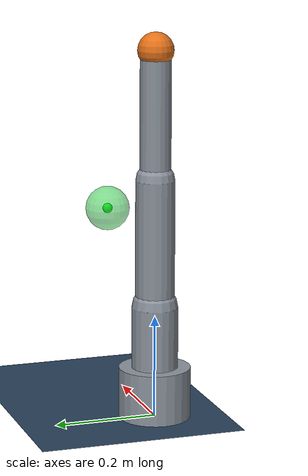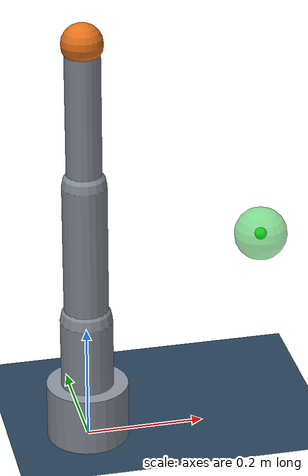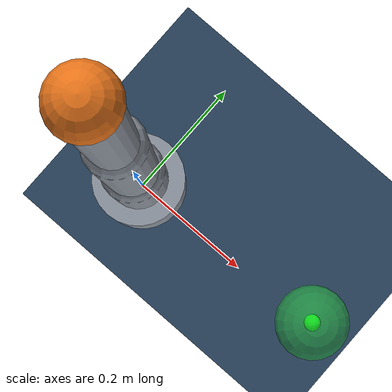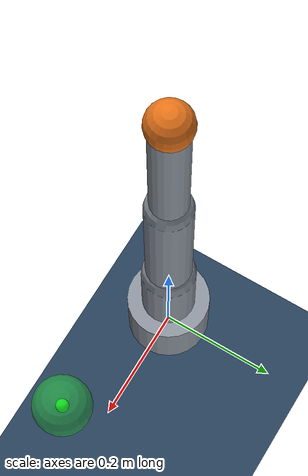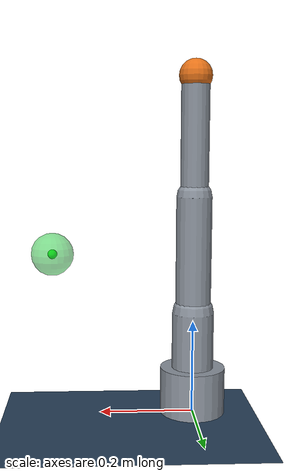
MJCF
<mujoco model="arm3_reacher">
  <!-- 3-DOF manipulator: shoulder pan (z), shoulder lift (y), elbow (y).
       The green sphere is a mocap body used as the reach target. -->

  <compiler angle="radian" autolimits="true"/>
  <option timestep="0.002" integrator="implicitfast" gravity="0 0 -9.81"/>

  <visual>
    <headlight diffuse="0.6 0.6 0.6" ambient="0.3 0.3 0.3" specular="0 0 0"/>
    <rgba haze="0.15 0.25 0.35 1"/>
    <global azimuth="140" elevation="-20"/>
  </visual>

  <asset>
    <texture type="skybox" builtin="gradient" rgb1="0.3 0.5 0.7" rgb2="0 0 0" width="512" height="3072"/>
    <texture type="2d" name="groundplane" builtin="checker" mark="edge"
             rgb1="0.2 0.3 0.4" rgb2="0.1 0.2 0.3" markrgb="0.8 0.8 0.8"
             width="300" height="300"/>
    <material name="groundplane" texture="groundplane" texuniform="true" texrepeat="5 5" reflectance="0.1"/>
    <material name="metal"  rgba="0.55 0.58 0.62 1" specular="0.6" shininess="0.6"/>
    <material name="accent" rgba="0.90 0.45 0.10 1" specular="0.4" shininess="0.4"/>
    <material name="target" rgba="0.15 0.80 0.25 0.55"/>
  </asset>

  <default>
    <joint type="hinge" damping="1.0" armature="0.1" limited="true"/>
    <geom type="capsule" material="metal" density="1000" friction="0.6 0.005 0.0001"/>
    <motor ctrlrange="-1 1" ctrllimited="true"/>
  </default>

  <worldbody>
    <light name="spotlight" mode="targetbodycom" target="link3" pos="0 -1.5 2" cutoff="45"/>
    <geom name="floor" type="plane" size="3 3 0.05" material="groundplane" contype="1" conaffinity="1"/>

    <body name="base" pos="0 0 0.05">
      <geom name="base_geom" type="cylinder" size="0.07 0.05" pos="0 0 0"/>

      <body name="link1" pos="0 0 0.05">
        <joint name="joint1" axis="0 0 1" range="-3.1416 3.1416"/>
        <geom name="link1_geom" fromto="0 0 0 0 0 0.12" size="0.045"/>

        <body name="link2" pos="0 0 0.12">
          <joint name="joint2" axis="0 1 0" range="-2.0 2.0"/>
          <geom name="link2_geom" fromto="0 0 0 0 0 0.25" size="0.038"/>

          <body name="link3" pos="0 0 0.25">
            <joint name="joint3" axis="0 1 0" range="-2.6 2.6"/>
            <geom name="link3_geom" fromto="0 0 0 0 0 0.25" size="0.030"/>

            <body name="ee" pos="0 0 0.25">
              <geom name="ee_geom" type="sphere" size="0.035" material="accent"/>
              <site name="tip" pos="0 0 0" size="0.012" rgba="1 0 0 1"/>
            </body>
          </body>
        </body>
      </body>
    </body>

    <body name="target" mocap="true" pos="0.30 0.0 0.35">
      <geom name="target_geom" type="sphere" size="0.045" material="target"
            contype="0" conaffinity="0"/>
      <site name="target_site" pos="0 0 0" size="0.01" rgba="0 1 0 1"/>
    </body>
  </worldbody>

  <contact>
    <exclude body1="base" body2="link1"/>
  </contact>

  <actuator>
    <motor name="m1" joint="joint1" gear="20"/>
    <motor name="m2" joint="joint2" gear="25"/>
    <motor name="m3" joint="joint3" gear="15"/>
  </actuator>

  <sensor>
    <framepos name="tip_pos" objtype="site" objname="tip"/>
    <framepos name="target_pos" objtype="site" objname="target_site"/>
  </sensor>
</mujoco>
